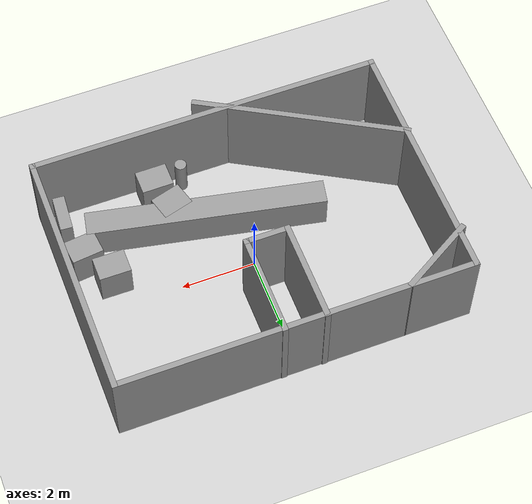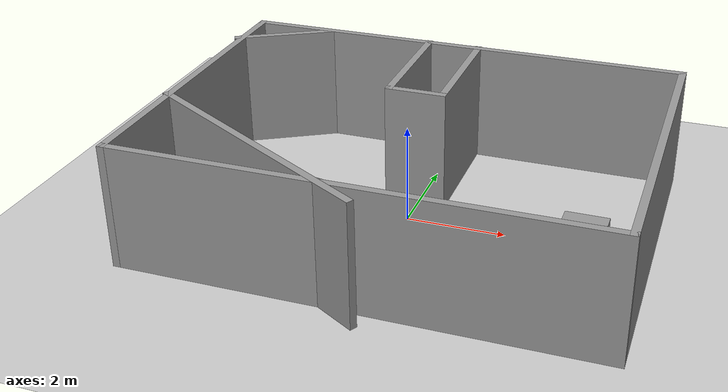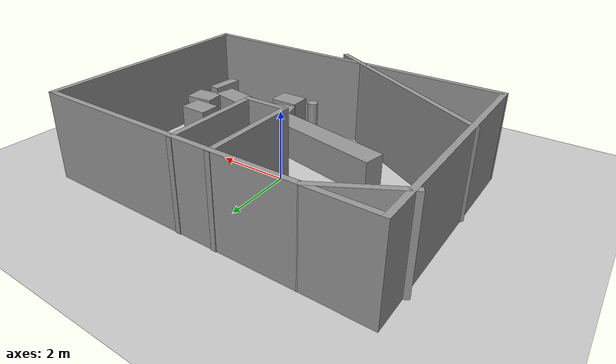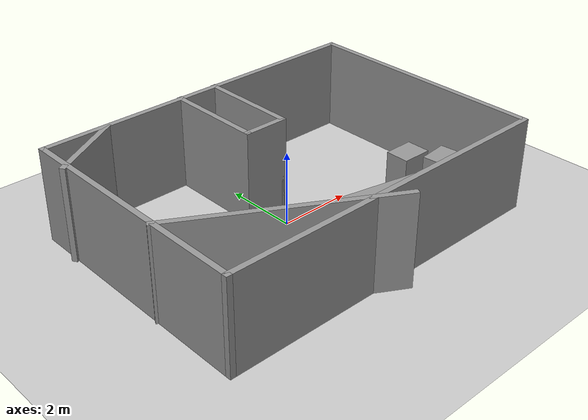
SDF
<sdf version="1.7">
 <world name="default">
  <model name="ground_plane">
   <static>1</static>
   <link name="link">
    <collision name="collision">
     <geometry><plane><normal>0 0 1</normal><size>100 100</size></plane></geometry>
     <surface>
      <contact><collide_bitmask>65535</collide_bitmask></contact>
      <friction><ode><mu>100</mu><mu2>50</mu2></ode></friction>
     </surface>
    </collision>
    <visual name="visual">
     <cast_shadows>0</cast_shadows>
     <geometry><plane><normal>0 0 1</normal><size>100 100</size></plane></geometry>
     <material>
      <script><uri>file://media/materials/scripts/gazebo.material</uri><name>Gazebo/Grey</name></script>
     </material>
    </visual>
   </link>
  </model>
  <model name="Untitled">
   <pose>0.040154 -0.243449 0 0 -0 0</pose>
   <link name="Wall_19">
    <collision name="Wall_19_Collision">
     <geometry><box><size>9.5 0.15 2.5</size></box></geometry>
     <pose>0 0 1.25 0 -0 0</pose>
    </collision>
    <visual name="Wall_19_Visual">
     <pose>0 0 1.25 0 -0 0</pose>
     <geometry><box><size>9.5 0.15 2.5</size></box></geometry>
     <material>
      <script><uri>file://media/materials/scripts/gazebo.material</uri><name>Gazebo/Grey</name></script>
      <ambient>1 1 1 1</ambient>
     </material>
     <meta><layer>0</layer></meta>
    </visual>
    <pose>0.065155 -3.08057 0 0 -0 3.14159</pose>
   </link>
   <link name="Wall_24">
    <collision name="Wall_24_Collision">
     <geometry><box><size>6.75 0.15 2.5</size></box></geometry>
     <pose>0 0 1.25 0 -0 0</pose>
    </collision>
    <visual name="Wall_24_Visual">
     <pose>0 0 1.25 0 -0 0</pose>
     <geometry><box><size>6.75 0.15 2.5</size></box></geometry>
     <material>
      <script><uri>file://media/materials/scripts/gazebo.material</uri><name>Gazebo/Grey</name></script>
      <ambient>1 1 1 1</ambient>
     </material>
     <meta><layer>0</layer></meta>
    </visual>
    <pose>-4.60984 0.219426 0 0 -0 1.5708</pose>
   </link>
   <link name="Wall_25">
    <collision name="Wall_25_Collision">
     <geometry><box><size>9.5 0.15 2.5</size></box></geometry>
     <pose>0 0 1.25 0 -0 0</pose>
    </collision>
    <visual name="Wall_25_Visual">
     <pose>0 0 1.25 0 -0 0</pose>
     <geometry><box><size>9.5 0.15 2.5</size></box></geometry>
     <material>
      <script><uri>file://media/materials/scripts/gazebo.material</uri><name>Gazebo/Grey</name></script>
      <ambient>1 1 1 1</ambient>
     </material>
     <meta><layer>0</layer></meta>
    </visual>
    <pose>0.065155 3.51943 0 0 -0 0</pose>
   </link>
   <link name="Wall_26">
    <collision name="Wall_26_Collision">
     <geometry><box><size>6.75 0.15 2.5</size></box></geometry>
     <pose>0 0 1.25 0 -0 0</pose>
    </collision>
    <visual name="Wall_26_Visual">
     <pose>0 0 1.25 0 -0 0</pose>
     <geometry><box><size>6.75 0.15 2.5</size></box></geometry>
     <material>
      <script><uri>file://media/materials/scripts/gazebo.material</uri><name>Gazebo/Grey</name></script>
      <ambient>1 1 1 1</ambient>
     </material>
     <meta><layer>0</layer></meta>
    </visual>
    <pose>4.74015 0.219426 0 0 -0 -1.5708</pose>
   </link>
   <link name="Wall_28">
    <collision name="Wall_28_Collision">
     <geometry><box><size>2.75 0.15 2.5</size></box></geometry>
     <pose>0 0 1.25 0 -0 0</pose>
    </collision>
    <visual name="Wall_28_Visual">
     <pose>0 0 1.25 0 -0 0</pose>
     <geometry><box><size>2.75 0.15 2.5</size></box></geometry>
     <material>
      <script><uri>file://media/materials/scripts/gazebo.material</uri><name>Gazebo/Grey</name></script>
      <ambient>1 1 1 1</ambient>
     </material>
     <meta><layer>0</layer></meta>
    </visual>
    <pose>-0.655321 2.23877 0 0 -0 -1.5708</pose>
   </link>
   <link name="Wall_29">
    <collision name="Wall_29_Collision">
     <geometry><box><size>1.25 0.15 2.5</size></box></geometry>
     <pose>0 0 1.25 0 -0 0</pose>
    </collision>
    <visual name="Wall_29_Visual">
     <pose>0 0 1.25 0 -0 0</pose>
     <geometry><box><size>1.25 0.15 2.5</size></box></geometry>
     <material>
      <script><uri>file://media/materials/scripts/gazebo.material</uri><name>Gazebo/Grey</name></script>
      <ambient>1 1 1 1</ambient>
     </material>
     <meta><layer>0</layer></meta>
    </visual>
    <pose>-0.105321 0.938769 0 0 -0 0</pose>
   </link>
   <link name="Wall_30">
    <collision name="Wall_30_Collision">
     <geometry><box><size>2.75 0.15 2.5</size></box></geometry>
     <pose>0 0 1.25 0 -0 0</pose>
    </collision>
    <visual name="Wall_30_Visual">
     <pose>0 0 1.25 0 -0 0</pose>
     <geometry><box><size>2.75 0.15 2.5</size></box></geometry>
     <material>
      <script><uri>file://media/materials/scripts/gazebo.material</uri><name>Gazebo/Grey</name></script>
      <ambient>1 1 1 1</ambient>
     </material>
     <meta><layer>0</layer></meta>
    </visual>
    <pose>0.444679 2.23877 0 0 -0 1.5708</pose>
   </link>
   <link name="Wall_32">
    <collision name="Wall_32_Collision">
     <geometry><box><size>2.25 0.15 2.5</size></box></geometry>
     <pose>0 0 1.25 0 -0 0</pose>
    </collision>
    <visual name="Wall_32_Visual">
     <pose>0 0 1.25 0 -0 0</pose>
     <geometry><box><size>2.25 0.15 2.5</size></box></geometry>
     <material>
      <script><uri>file://media/materials/scripts/gazebo.material</uri><name>Gazebo/Grey</name></script>
      <ambient>1 1 1 1</ambient>
     </material>
     <meta><layer>0</layer></meta>
    </visual>
    <pose>-3.80338 2.97879 0 0 -0 -2.61799</pose>
   </link>
   <link name="Wall_34">
    <collision name="Wall_34_Collision">
     <geometry><box><size>5.75 0.15 2.5</size></box></geometry>
     <pose>0 0 1.25 0 -0 0</pose>
    </collision>
    <visual name="Wall_34_Visual">
     <pose>0 0 1.25 0 -0 0</pose>
     <geometry><box><size>5.75 0.15 2.5</size></box></geometry>
     <material>
      <script><uri>file://media/materials/scripts/gazebo.material</uri><name>Gazebo/Grey</name></script>
      <ambient>1 1 1 1</ambient>
     </material>
     <meta><layer>0</layer></meta>
    </visual>
    <pose>-2.21818 -2.11132 0 0 -0 -0.523599</pose>
   </link>
   <static>1</static>
  </model>
  <model name="unit_box_0_clone">
   <pose>3.62881 -0.730656 0.499995 -2e-06 1e-05 -0.006327</pose>
   <link name="link">
    <inertial>
     <mass>1</mass>
     <inertia>
      <ixx>0.166667</ixx>
      <ixy>0</ixy>
      <ixz>0</ixz>
      <iyy>0.166667</iyy>
      <iyz>0</iyz>
      <izz>0.166667</izz>
     </inertia>
    </inertial>
    <collision name="collision"><geometry><box><size>0.846525 0.662942 1</size></box></geometry></collision>
    <visual name="visual">
     <geometry><box><size>0.846525 0.662942 1</size></box></geometry>
     <material>
      <script><name>Gazebo/Grey</name><uri>file://media/materials/scripts/gazebo.material</uri></script>
     </material>
    </visual>
   </link>
  </model>
  <model name="unit_box_0_clone_0">
   <pose>1.55427 -2.0112 0.5 0 -0 0.275134</pose>
   <link name="link">
    <inertial>
     <mass>1</mass>
     <inertia>
      <ixx>0.166667</ixx>
      <ixy>0</ixy>
      <ixz>0</ixz>
      <iyy>0.166667</iyy>
      <iyz>0</iyz>
      <izz>0.166667</izz>
     </inertia>
    </inertial>
    <collision name="collision"><geometry><box><size>0.846525 0.662942 1</size></box></geometry></collision>
    <visual name="visual">
     <geometry><box><size>0.846525 0.662942 1</size></box></geometry>
     <material>
      <script><name>Gazebo/Grey</name><uri>file://media/materials/scripts/gazebo.material</uri></script>
     </material>
    </visual>
   </link>
  </model>
  <model name="unit_box_0_clone_1">
   <pose>4.14531 -1.49621 0.499995 -2e-06 1e-05 0.105909</pose>
   <link name="link">
    <inertial>
     <mass>1</mass>
     <inertia>
      <ixx>0.166667</ixx>
      <ixy>0</ixy>
      <ixz>0</ixz>
      <iyy>0.166667</iyy>
      <iyz>0</iyz>
      <izz>0.166667</izz>
     </inertia>
    </inertial>
    <collision name="collision"><geometry><box><size>0.846525 0.662942 1</size></box></geometry></collision>
    <visual name="visual">
     <geometry><box><size>0.846525 0.662942 1</size></box></geometry>
     <material>
      <script><name>Gazebo/Grey</name><uri>file://media/materials/scripts/gazebo.material</uri></script>
     </material>
    </visual>
   </link>
  </model>
  <model name="unit_box_0_clone_2">
   <pose>1.75209 -2.84512 0.499995 2e-06 1e-05 0.006729</pose>
   <link name="link">
    <inertial>
     <mass>1</mass>
     <inertia>
      <ixx>0.166667</ixx>
      <ixy>0</ixy>
      <ixz>0</ixz>
      <iyy>0.166667</iyy>
      <iyz>0</iyz>
      <izz>0.166667</izz>
     </inertia>
    </inertial>
    <collision name="collision"><geometry><box><size>0.846525 0.662942 1</size></box></geometry></collision>
    <visual name="visual">
     <geometry><box><size>0.846525 0.662942 1</size></box></geometry>
     <material>
      <script><name>Gazebo/Grey</name><uri>file://media/materials/scripts/gazebo.material</uri></script>
     </material>
    </visual>
   </link>
  </model>
  <model name="unit_box_0_clone_3">
   <pose>0.781152 -1.50689 0.5 0 0 -0.201909</pose>
   <link name="link">
    <inertial>
     <mass>1</mass>
     <inertia>
      <ixx>0.166667</ixx>
      <ixy>0</ixy>
      <ixz>0</ixz>
      <iyy>0.166667</iyy>
      <iyz>0</iyz>
      <izz>0.166667</izz>
     </inertia>
    </inertial>
    <collision name="collision"><geometry><box><size>6.32765 0.662942 1</size></box></geometry></collision>
    <visual name="visual">
     <geometry><box><size>6.32765 0.662942 1</size></box></geometry>
     <material>
      <script><name>Gazebo/Grey</name><uri>file://media/materials/scripts/gazebo.material</uri></script>
     </material>
    </visual>
   </link>
  </model>
  <model name="unit_cylinder_0_clone_0_clone_clone_0">
   <pose>0.958131 -3.00951 0.499993 0 -0 -1.4e-05</pose>
   <link name="link">
    <inertial>
     <mass>1</mass>
     <inertia><ixx>0.145833</ixx><ixy>0</ixy><ixz>0</ixz><iyy>0.145833</iyy><iyz>0</iyz><izz>0.125</izz></inertia>
    </inertial>
    <collision name="collision">
     <geometry><cylinder><radius>0.159231</radius><length>1</length></cylinder></geometry>
    </collision>
    <visual name="visual">
     <geometry><cylinder><radius>0.159231</radius><length>1</length></cylinder></geometry>
     <material>
      <script><name>Gazebo/Grey</name><uri>file://media/materials/scripts/gazebo.material</uri></script>
     </material>
    </visual>
   </link>
  </model>
  <model name="unit_box_1_clone_1_clone">
   <pose>4.33945 -2.67163 0.5 1e-06 -0 1.49162</pose>
   <link name="link">
    <inertial>
     <mass>1</mass>
     <inertia>
      <ixx>0.166667</ixx>
      <ixy>0</ixy>
      <ixz>0</ixz>
      <iyy>0.166667</iyy>
      <iyz>0</iyz>
      <izz>0.166667</izz>
     </inertia>
    </inertial>
    <collision name="collision"><geometry><box><size>1 0.321828 1</size></box></geometry></collision>
    <visual name="visual">
     <geometry><box><size>1 0.321828 1</size></box></geometry>
     <material>
      <script><name>Gazebo/Grey</name><uri>file://media/materials/scripts/gazebo.material</uri></script>
     </material>
    </visual>
   </link>
  </model>
 </world>
</sdf>
